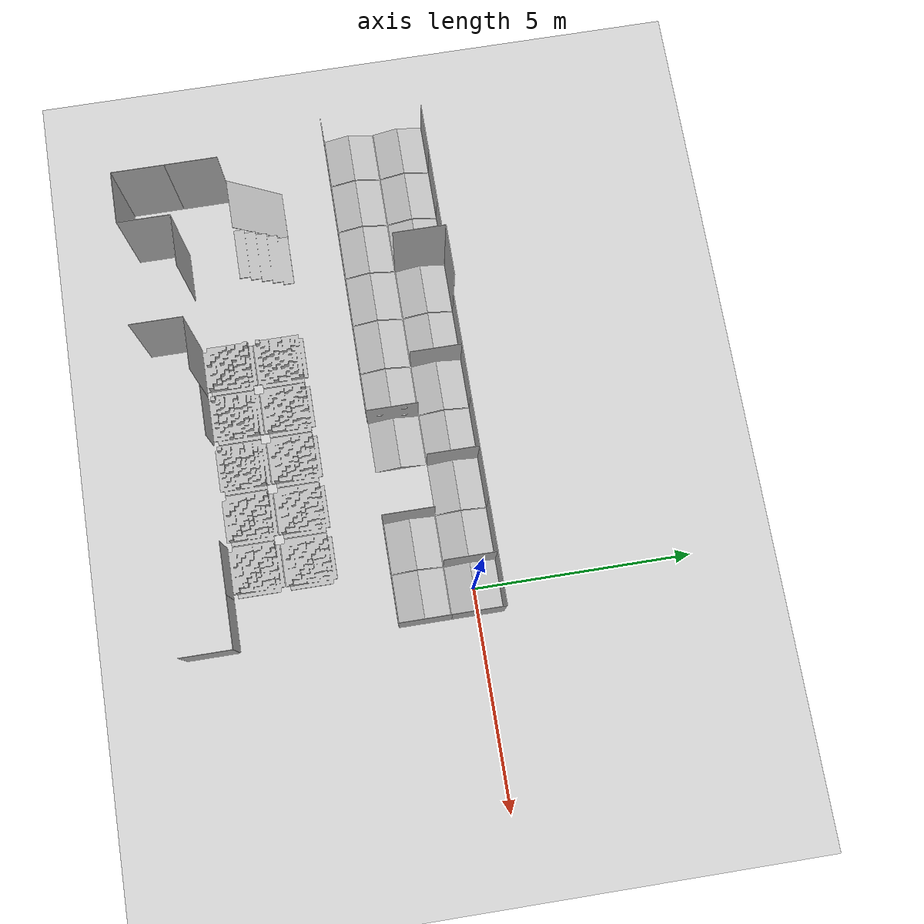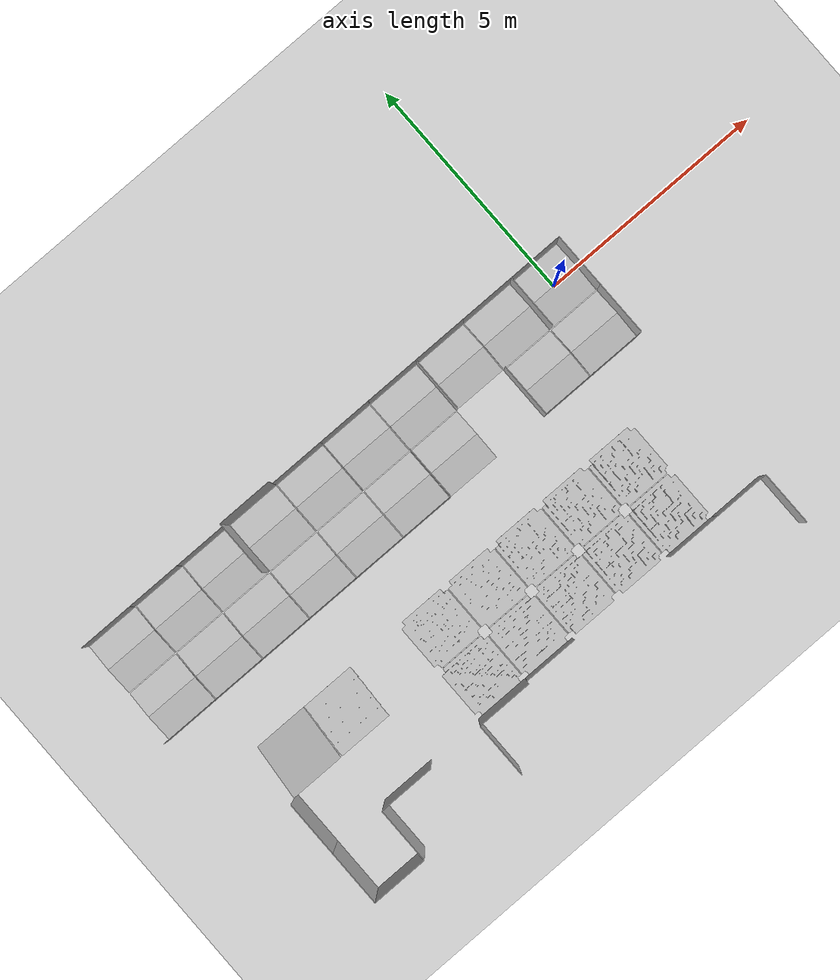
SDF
<sdf version="1.4">
 <world name="default">
  <include><uri>model://sun</uri></include>
  <model name="plane_model">
   <static>true</static>
   <link name="plane_model_link">
    <collision name="plane_model_collision">
     <geometry><plane><normal>0 0 1</normal><size>40 40</size></plane></geometry>
    </collision>
    <visual name="plane_model_visual">
     <cast_shadows>false</cast_shadows>
     <geometry><plane><normal>0 0 1</normal><size>40 40</size></plane></geometry>
     <material><script>Gazebo/Grey</script></material>
    </visual>
   </link>
  </model>
  <model name="small_wall_1">
   <static>true</static>
   <link name="small_wall_1_link">
    <pose>0 0 0 0 0 -1.5708</pose>
    <collision name="small_wall_1_collision">
     <geometry><mesh><uri>file://robocup/walls/small_wall.dae</uri><scale>1 1 1</scale></mesh></geometry>
    </collision>
    <visual name="small_wall_1_visual">
     <cast_shadows>false</cast_shadows>
     <geometry><mesh><uri>file://robocup/walls/small_wall.dae</uri><scale>1 1 1</scale></mesh></geometry>
    </visual>
   </link>
  </model>
  <model name="small_wall_2">
   <static>true</static>
   <link name="small_wall_2_link">
    <pose>0 1.2 0 0 0 -3.14159</pose>
    <collision name="small_wall_2_collision">
     <geometry><mesh><uri>file://robocup/walls/small_wall.dae</uri><scale>1 1 1</scale></mesh></geometry>
    </collision>
    <visual name="small_wall_2_visual">
     <cast_shadows>false</cast_shadows>
     <geometry><mesh><uri>file://robocup/walls/small_wall.dae</uri><scale>1 1 1</scale></mesh></geometry>
    </visual>
   </link>
  </model>
  <model name="small_wall_3">
   <static>true</static>
   <link name="small_wall_3_link">
    <pose>0 -1.2 0 0 0 -1.5708</pose>
    <collision name="small_wall_3_collision">
     <geometry><mesh><uri>file://robocup/walls/small_wall.dae</uri><scale>1 1 1</scale></mesh></geometry>
    </collision>
    <visual name="small_wall_3_visual">
     <cast_shadows>false</cast_shadows>
     <geometry><mesh><uri>file://robocup/walls/small_wall.dae</uri><scale>1 1 1</scale></mesh></geometry>
    </visual>
   </link>
  </model>
  <model name="small_wall_4">
   <static>true</static>
   <link name="small_wall_4_link">
    <pose>0 -2.4 0 0 0 0</pose>
    <collision name="small_wall_4_collision">
     <geometry><mesh><uri>file://robocup/walls/small_wall.dae</uri><scale>1 1 1</scale></mesh></geometry>
    </collision>
    <visual name="small_wall_4_visual">
     <cast_shadows>false</cast_shadows>
     <geometry><mesh><uri>file://robocup/walls/small_wall.dae</uri><scale>1 1 1</scale></mesh></geometry>
    </visual>
   </link>
  </model>
  <model name="small_wall_5">
   <static>true</static>
   <link name="small_wall_5_link">
    <pose>0 0 0 0 0 -4.71239</pose>
    <collision name="small_wall_5_collision">
     <geometry><mesh><uri>file://robocup/walls/small_wall.dae</uri><scale>1 1 1</scale></mesh></geometry>
    </collision>
    <visual name="small_wall_5_visual">
     <cast_shadows>false</cast_shadows>
     <geometry><mesh><uri>file://robocup/walls/small_wall.dae</uri><scale>1 1 1</scale></mesh></geometry>
    </visual>
   </link>
  </model>
  <model name="small_wall_6">
   <static>true</static>
   <link name="small_wall_6_link">
    <pose>-1.2 0 0 0 0 0</pose>
    <collision name="small_wall_6_collision">
     <geometry><mesh><uri>file://robocup/walls/small_wall.dae</uri><scale>1 1 1</scale></mesh></geometry>
    </collision>
    <visual name="small_wall_6_visual">
     <cast_shadows>false</cast_shadows>
     <geometry><mesh><uri>file://robocup/walls/small_wall.dae</uri><scale>1 1 1</scale></mesh></geometry>
    </visual>
   </link>
  </model>
  <model name="small_wall_7">
   <static>true</static>
   <link name="small_wall_7_link">
    <pose>-2.4 1.2 0 0 0 -3.14159</pose>
    <collision name="small_wall_7_collision">
     <geometry><mesh><uri>file://robocup/walls/small_wall.dae</uri><scale>1 1 1</scale></mesh></geometry>
    </collision>
    <visual name="small_wall_7_visual">
     <cast_shadows>false</cast_shadows>
     <geometry><mesh><uri>file://robocup/walls/small_wall.dae</uri><scale>1 1 1</scale></mesh></geometry>
    </visual>
   </link>
  </model>
  <model name="small_wall_8">
   <static>true</static>
   <link name="small_wall_8_link">
    <pose>-3.6 0 0 0 0 0</pose>
    <collision name="small_wall_8_collision">
     <geometry><mesh><uri>file://robocup/walls/small_wall.dae</uri><scale>1 1 1</scale></mesh></geometry>
    </collision>
    <visual name="small_wall_8_visual">
     <cast_shadows>false</cast_shadows>
     <geometry><mesh><uri>file://robocup/walls/small_wall.dae</uri><scale>1 1 1</scale></mesh></geometry>
    </visual>
   </link>
  </model>
  <model name="half_ramp_1">
   <static>true</static>
   <link name="half_ramp_1_link">
    <collision name="half_ramp_1_collision">
     <geometry><mesh><uri>file://robocup/ramps/half_ramp.dae</uri><scale>1 1 1</scale></mesh></geometry>
    </collision>
    <visual name="half_ramp_1_visual">
     <cast_shadows>false</cast_shadows>
     <geometry><mesh><uri>file://robocup/ramps/half_ramp.dae</uri><scale>1 1 1</scale></mesh></geometry>
    </visual>
   </link>
  </model>
  <model name="half_ramp_2">
   <static>true</static>
   <link name="half_ramp_2_link">
    <pose>0 -1.2 0 0 0 0</pose>
    <collision name="half_ramp_2_collision">
     <geometry><mesh><uri>file://robocup/ramps/half_ramp.dae</uri><scale>1 1 1</scale></mesh></geometry>
    </collision>
    <visual name="half_ramp_2_visual">
     <cast_shadows>false</cast_shadows>
     <geometry><mesh><uri>file://robocup/ramps/half_ramp.dae</uri><scale>1 1 1</scale></mesh></geometry>
    </visual>
   </link>
  </model>
  <model name="half_ramp_3">
   <static>true</static>
   <link name="half_ramp_3_link">
    <pose>-1.2 0 0 0 0 -3.14159</pose>
    <collision name="half_ramp_3_collision">
     <geometry><mesh><uri>file://robocup/ramps/half_ramp.dae</uri><scale>1 1 1</scale></mesh></geometry>
    </collision>
    <visual name="half_ramp_3_visual">
     <cast_shadows>false</cast_shadows>
     <geometry><mesh><uri>file://robocup/ramps/half_ramp.dae</uri><scale>1 1 1</scale></mesh></geometry>
    </visual>
   </link>
  </model>
  <model name="half_ramp_4">
   <static>true</static>
   <link name="half_ramp_4_link">
    <pose>-1.2 -1.2 0 0 0 0</pose>
    <collision name="half_ramp_4_collision">
     <geometry><mesh><uri>file://robocup/ramps/half_ramp.dae</uri><scale>1 1 1</scale></mesh></geometry>
    </collision>
    <visual name="half_ramp_4_visual">
     <cast_shadows>false</cast_shadows>
     <geometry><mesh><uri>file://robocup/ramps/half_ramp.dae</uri><scale>1 1 1</scale></mesh></geometry>
    </visual>
   </link>
  </model>
  <model name="half_ramp_5">
   <static>true</static>
   <link name="half_ramp_5_link">
    <pose>-2.4 0 0 0 0 0</pose>
    <collision name="half_ramp_5_collision">
     <geometry><mesh><uri>file://robocup/ramps/half_ramp.dae</uri><scale>1 1 1</scale></mesh></geometry>
    </collision>
    <visual name="half_ramp_5_visual">
     <cast_shadows>false</cast_shadows>
     <geometry><mesh><uri>file://robocup/ramps/half_ramp.dae</uri><scale>1 1 1</scale></mesh></geometry>
    </visual>
   </link>
  </model>
  <model name="half_ramp_6">
   <static>true</static>
   <link name="half_ramp_6_link">
    <pose>-2.4 0 0 0 0 -3.14159</pose>
    <collision name="half_ramp_6_collision">
     <geometry><mesh><uri>file://robocup/ramps/half_ramp.dae</uri><scale>1 1 1</scale></mesh></geometry>
    </collision>
    <visual name="half_ramp_6_visual">
     <cast_shadows>false</cast_shadows>
     <geometry><mesh><uri>file://robocup/ramps/half_ramp.dae</uri><scale>1 1 1</scale></mesh></geometry>
    </visual>
   </link>
  </model>
  <model name="half_ramp_7">
   <static>true</static>
   <link name="half_ramp_7_link">
    <pose>-1.2 0 0 0 0 0</pose>
    <collision name="half_ramp_7_collision">
     <geometry><mesh><uri>file://robocup/ramps/half_ramp.dae</uri><scale>1 1 1</scale></mesh></geometry>
    </collision>
    <visual name="half_ramp_7_visual">
     <cast_shadows>false</cast_shadows>
     <geometry><mesh><uri>file://robocup/ramps/half_ramp.dae</uri><scale>1 1 1</scale></mesh></geometry>
    </visual>
   </link>
  </model>
  <model name="half_ramp_8">
   <static>true</static>
   <link name="half_ramp_8_link">
    <pose>0 0 0 0 0 -3.14159</pose>
    <collision name="half_ramp_8_collision">
     <geometry><mesh><uri>file://robocup/ramps/half_ramp.dae</uri><scale>1 1 1</scale></mesh></geometry>
    </collision>
    <visual name="half_ramp_8_visual">
     <cast_shadows>false</cast_shadows>
     <geometry><mesh><uri>file://robocup/ramps/half_ramp.dae</uri><scale>1 1 1</scale></mesh></geometry>
    </visual>
   </link>
  </model>
  <model name="half_ramp_9">
   <static>true</static>
   <link name="half_ramp_9_link">
    <pose>0 -1.2 0 0 0 -3.14159</pose>
    <collision name="half_ramp_9_collision">
     <geometry><mesh><uri>file://robocup/ramps/half_ramp.dae</uri><scale>1 1 1</scale></mesh></geometry>
    </collision>
    <visual name="half_ramp_9_visual">
     <cast_shadows>false</cast_shadows>
     <geometry><mesh><uri>file://robocup/ramps/half_ramp.dae</uri><scale>1 1 1</scale></mesh></geometry>
    </visual>
   </link>
  </model>
  <model name="half_ramp_10">
   <static>true</static>
   <link name="half_ramp_10_link">
    <pose>-1.2 -1.2 0 0 0 -3.14159</pose>
    <collision name="half_ramp_10_collision">
     <geometry><mesh><uri>file://robocup/ramps/half_ramp.dae</uri><scale>1 1 1</scale></mesh></geometry>
    </collision>
    <visual name="half_ramp_10_visual">
     <cast_shadows>false</cast_shadows>
     <geometry><mesh><uri>file://robocup/ramps/half_ramp.dae</uri><scale>1 1 1</scale></mesh></geometry>
    </visual>
   </link>
  </model>
  <model name="small_wall_9">
   <static>true</static>
   <link name="small_wall_9_link">
    <pose>-1.2 -2.4 0 0 0 0</pose>
    <collision name="small_wall_9_collision">
     <geometry><mesh><uri>file://robocup/walls/small_wall.dae</uri><scale>1 1 1</scale></mesh></geometry>
    </collision>
    <visual name="small_wall_9_visual">
     <cast_shadows>false</cast_shadows>
     <geometry><mesh><uri>file://robocup/walls/small_wall.dae</uri><scale>1 1 1</scale></mesh></geometry>
    </visual>
   </link>
  </model>
  <model name="small_wall_10">
   <static>true</static>
   <link name="small_wall_10_link">
    <pose>-1.2 -1.2 0 0 0 -4.71239</pose>
    <collision name="small_wall_10_collision">
     <geometry><mesh><uri>file://robocup/walls/small_wall.dae</uri><scale>1 1 1</scale></mesh></geometry>
    </collision>
    <visual name="small_wall_10_visual">
     <cast_shadows>false</cast_shadows>
     <geometry><mesh><uri>file://robocup/walls/small_wall.dae</uri><scale>1 1 1</scale></mesh></geometry>
    </visual>
   </link>
  </model>
  <model name="small_wall_13">
   <static>true</static>
   <link name="small_wall_13_link">
    <pose>-2.4 0 0 0 0 -4.71239</pose>
    <collision name="small_wall_13_collision">
     <geometry><mesh><uri>file://robocup/walls/small_wall.dae</uri><scale>1 1 1</scale></mesh></geometry>
    </collision>
    <visual name="small_wall_13_visual">
     <cast_shadows>false</cast_shadows>
     <geometry><mesh><uri>file://robocup/walls/small_wall.dae</uri><scale>1 1 1</scale></mesh></geometry>
    </visual>
   </link>
  </model>
  <model name="small_wall_14">
   <static>true</static>
   <link name="small_wall_14_link">
    <pose>-4.8 0 0 0 0 0</pose>
    <collision name="small_wall_14_collision">
     <geometry><mesh><uri>file://robocup/walls/small_wall.dae</uri><scale>1 1 1</scale></mesh></geometry>
    </collision>
    <visual name="small_wall_14_visual">
     <cast_shadows>false</cast_shadows>
     <geometry><mesh><uri>file://robocup/walls/small_wall.dae</uri><scale>1 1 1</scale></mesh></geometry>
    </visual>
   </link>
  </model>
  <model name="small_wall_15">
   <static>true</static>
   <link name="small_wall_15_link">
    <pose>-6 0 0 0 0 0</pose>
    <collision name="small_wall_15_collision">
     <geometry><mesh><uri>file://robocup/walls/small_wall.dae</uri><scale>1 1 1</scale></mesh></geometry>
    </collision>
    <visual name="small_wall_15_visual">
     <cast_shadows>false</cast_shadows>
     <geometry><mesh><uri>file://robocup/walls/small_wall.dae</uri><scale>1 1 1</scale></mesh></geometry>
    </visual>
   </link>
  </model>
  <model name="small_wall_16">
   <static>true</static>
   <link name="small_wall_16_link">
    <pose>-4.8 -1.2 0 0 0 -3.14159</pose>
    <collision name="small_wall_16_collision">
     <geometry><mesh><uri>file://robocup/walls/small_wall.dae</uri><scale>1 1 1</scale></mesh></geometry>
    </collision>
    <visual name="small_wall_16_visual">
     <cast_shadows>false</cast_shadows>
     <geometry><mesh><uri>file://robocup/walls/small_wall.dae</uri><scale>1 1 1</scale></mesh></geometry>
    </visual>
   </link>
  </model>
  <model name="small_wall_17">
   <static>true</static>
   <link name="small_wall_17_link">
    <pose>-6 -1.2 0 0 0 -3.14159</pose>
    <collision name="small_wall_17_collision">
     <geometry><mesh><uri>file://robocup/walls/small_wall.dae</uri><scale>1 1 1</scale></mesh></geometry>
    </collision>
    <visual name="small_wall_17_visual">
     <cast_shadows>false</cast_shadows>
     <geometry><mesh><uri>file://robocup/walls/small_wall.dae</uri><scale>1 1 1</scale></mesh></geometry>
    </visual>
   </link>
  </model>
  <model name="small_wall_18">
   <static>true</static>
   <link name="small_wall_18_link">
    <pose>-4.8 0 0 0 0 -4.71239</pose>
    <collision name="small_wall_18_collision">
     <geometry><mesh><uri>file://robocup/walls/small_wall.dae</uri><scale>1 1 1</scale></mesh></geometry>
    </collision>
    <visual name="small_wall_18_visual">
     <cast_shadows>false</cast_shadows>
     <geometry><mesh><uri>file://robocup/walls/small_wall.dae</uri><scale>1 1 1</scale></mesh></geometry>
    </visual>
   </link>
  </model>
  <model name="small_wall_19">
   <static>true</static>
   <link name="small_wall_19_link">
    <pose>-7.2 -2.4 0 0 0 0</pose>
    <collision name="small_wall_19_collision">
     <geometry><mesh><uri>file://robocup/walls/small_wall.dae</uri><scale>1 1 1</scale></mesh></geometry>
    </collision>
    <visual name="small_wall_19_visual">
     <cast_shadows>false</cast_shadows>
     <geometry><mesh><uri>file://robocup/walls/small_wall.dae</uri><scale>1 1 1</scale></mesh></geometry>
    </visual>
   </link>
  </model>
  <model name="tall_wall_1">
   <static>true</static>
   <link name="tall_wall_1_link">
    <pose>-7.2 1.2 0 0 0 -3.14159</pose>
    <collision name="tall_wall_1_collision">
     <geometry><mesh><uri>file://robocup/walls/tall_wall.dae</uri><scale>1 1 1</scale></mesh></geometry>
    </collision>
    <visual name="tall_wall_1_visual">
     <cast_shadows>false</cast_shadows>
     <geometry><mesh><uri>file://robocup/walls/tall_wall.dae</uri><scale>1 1 1</scale></mesh></geometry>
    </visual>
   </link>
  </model>
  <model name="tall_wall_2">
   <static>true</static>
   <link name="tall_wall_2_link">
    <pose>-8.4 0 0 0 0 -1.5708</pose>
    <collision name="tall_wall_2_collision">
     <geometry><mesh><uri>file://robocup/walls/tall_wall.dae</uri><scale>1 1 1</scale></mesh></geometry>
    </collision>
    <visual name="tall_wall_2_visual">
     <cast_shadows>false</cast_shadows>
     <geometry><mesh><uri>file://robocup/walls/tall_wall.dae</uri><scale>1 1 1</scale></mesh></geometry>
    </visual>
   </link>
  </model>
  <model name="small_wall_20">
   <static>true</static>
   <link name="small_wall_20_link">
    <pose>-8.4 -1.2 0 0 0 -3.14159</pose>
    <collision name="small_wall_20_collision">
     <geometry><mesh><uri>file://robocup/walls/small_wall.dae</uri><scale>1 1 1</scale></mesh></geometry>
    </collision>
    <visual name="small_wall_20_visual">
     <cast_shadows>false</cast_shadows>
     <geometry><mesh><uri>file://robocup/walls/small_wall.dae</uri><scale>1 1 1</scale></mesh></geometry>
    </visual>
   </link>
  </model>
  <model name="small_wall_21">
   <static>true</static>
   <link name="small_wall_21_link">
    <pose>-8.4 1.2 0 0 0 -3.14159</pose>
    <collision name="small_wall_21_collision">
     <geometry><mesh><uri>file://robocup/walls/small_wall.dae</uri><scale>1 1 1</scale></mesh></geometry>
    </collision>
    <visual name="small_wall_21_visual">
     <cast_shadows>false</cast_shadows>
     <geometry><mesh><uri>file://robocup/walls/small_wall.dae</uri><scale>1 1 1</scale></mesh></geometry>
    </visual>
   </link>
  </model>
  <model name="small_wall_22">
   <static>true</static>
   <link name="small_wall_22_link">
    <pose>-9.6 1.2 0 0 0 -3.14159</pose>
    <collision name="small_wall_22_collision">
     <geometry><mesh><uri>file://robocup/walls/small_wall.dae</uri><scale>1 1 1</scale></mesh></geometry>
    </collision>
    <visual name="small_wall_22_visual">
     <cast_shadows>false</cast_shadows>
     <geometry><mesh><uri>file://robocup/walls/small_wall.dae</uri><scale>1 1 1</scale></mesh></geometry>
    </visual>
   </link>
  </model>
  <model name="small_wall_23">
   <static>true</static>
   <link name="small_wall_23_link">
    <pose>-10.8 0 0 0 0 0</pose>
    <collision name="small_wall_23_collision">
     <geometry><mesh><uri>file://robocup/walls/small_wall.dae</uri><scale>1 1 1</scale></mesh></geometry>
    </collision>
    <visual name="small_wall_23_visual">
     <cast_shadows>false</cast_shadows>
     <geometry><mesh><uri>file://robocup/walls/small_wall.dae</uri><scale>1 1 1</scale></mesh></geometry>
    </visual>
   </link>
  </model>
  <model name="small_wall_24">
   <static>true</static>
   <link name="small_wall_24_link">
    <pose>-9.6 -1.2 0 0 0 -3.14159</pose>
    <collision name="small_wall_24_collision">
     <geometry><mesh><uri>file://robocup/walls/small_wall.dae</uri><scale>1 1 1</scale></mesh></geometry>
    </collision>
    <visual name="small_wall_24_visual">
     <cast_shadows>false</cast_shadows>
     <geometry><mesh><uri>file://robocup/walls/small_wall.dae</uri><scale>1 1 1</scale></mesh></geometry>
    </visual>
   </link>
  </model>
  <model name="small_wall_25">
   <static>true</static>
   <link name="small_wall_25_link">
    <pose>-10.8 -2.4 0 0 0 0</pose>
    <collision name="small_wall_25_collision">
     <geometry><mesh><uri>file://robocup/walls/small_wall.dae</uri><scale>1 1 1</scale></mesh></geometry>
    </collision>
    <visual name="small_wall_25_visual">
     <cast_shadows>false</cast_shadows>
     <geometry><mesh><uri>file://robocup/walls/small_wall.dae</uri><scale>1 1 1</scale></mesh></geometry>
    </visual>
   </link>
  </model>
  <model name="half_ramp_11">
   <static>true</static>
   <link name="half_ramp_11_link">
    <pose>-3.6 0 0 0 0 0</pose>
    <collision name="half_ramp_11_collision">
     <geometry><mesh><uri>file://robocup/ramps/half_ramp.dae</uri><scale>1 1 1</scale></mesh></geometry>
    </collision>
    <visual name="half_ramp_11_visual">
     <cast_shadows>false</cast_shadows>
     <geometry><mesh><uri>file://robocup/ramps/half_ramp.dae</uri><scale>1 1 1</scale></mesh></geometry>
    </visual>
   </link>
  </model>
  <model name="half_ramp_12">
   <static>true</static>
   <link name="half_ramp_12_link">
    <pose>-4.8 0 0 0 0 0</pose>
    <collision name="half_ramp_12_collision">
     <geometry><mesh><uri>file://robocup/ramps/half_ramp.dae</uri><scale>1 1 1</scale></mesh></geometry>
    </collision>
    <visual name="half_ramp_12_visual">
     <cast_shadows>false</cast_shadows>
     <geometry><mesh><uri>file://robocup/ramps/half_ramp.dae</uri><scale>1 1 1</scale></mesh></geometry>
    </visual>
   </link>
  </model>
  <model name="half_ramp_13">
   <static>true</static>
   <link name="half_ramp_13_link">
    <pose>-6 0 0 0 0 0</pose>
    <collision name="half_ramp_13_collision">
     <geometry><mesh><uri>file://robocup/ramps/half_ramp.dae</uri><scale>1 1 1</scale></mesh></geometry>
    </collision>
    <visual name="half_ramp_13_visual">
     <cast_shadows>false</cast_shadows>
     <geometry><mesh><uri>file://robocup/ramps/half_ramp.dae</uri><scale>1 1 1</scale></mesh></geometry>
    </visual>
   </link>
  </model>
  <model name="half_ramp_14">
   <static>true</static>
   <link name="half_ramp_14_link">
    <pose>-7.2 0 0 0 0 0</pose>
    <collision name="half_ramp_14_collision">
     <geometry><mesh><uri>file://robocup/ramps/half_ramp.dae</uri><scale>1 1 1</scale></mesh></geometry>
    </collision>
    <visual name="half_ramp_14_visual">
     <cast_shadows>false</cast_shadows>
     <geometry><mesh><uri>file://robocup/ramps/half_ramp.dae</uri><scale>1 1 1</scale></mesh></geometry>
    </visual>
   </link>
  </model>
  <model name="half_ramp_15">
   <static>true</static>
   <link name="half_ramp_15_link">
    <pose>-8.4 0 0 0 0 0</pose>
    <collision name="half_ramp_15_collision">
     <geometry><mesh><uri>file://robocup/ramps/half_ramp.dae</uri><scale>1 1 1</scale></mesh></geometry>
    </collision>
    <visual name="half_ramp_15_visual">
     <cast_shadows>false</cast_shadows>
     <geometry><mesh><uri>file://robocup/ramps/half_ramp.dae</uri><scale>1 1 1</scale></mesh></geometry>
    </visual>
   </link>
  </model>
  <model name="half_ramp_16">
   <static>true</static>
   <link name="half_ramp_16_link">
    <pose>-9.6 0 0 0 0 0</pose>
    <collision name="half_ramp_16_collision">
     <geometry><mesh><uri>file://robocup/ramps/half_ramp.dae</uri><scale>1 1 1</scale></mesh></geometry>
    </collision>
    <visual name="half_ramp_16_visual">
     <cast_shadows>false</cast_shadows>
     <geometry><mesh><uri>file://robocup/ramps/half_ramp.dae</uri><scale>1 1 1</scale></mesh></geometry>
    </visual>
   </link>
  </model>
  <model name="half_ramp_17">
   <static>true</static>
   <link name="half_ramp_17_link">
    <pose>-10.8 0 0 0 0 0</pose>
    <collision name="half_ramp_17_collision">
     <geometry><mesh><uri>file://robocup/ramps/half_ramp.dae</uri><scale>1 1 1</scale></mesh></geometry>
    </collision>
    <visual name="half_ramp_17_visual">
     <cast_shadows>false</cast_shadows>
     <geometry><mesh><uri>file://robocup/ramps/half_ramp.dae</uri><scale>1 1 1</scale></mesh></geometry>
    </visual>
   </link>
  </model>
  <model name="half_ramp_18">
   <static>true</static>
   <link name="half_ramp_18_link">
    <pose>-3.6 -1.2 0 0 0 0</pose>
    <collision name="half_ramp_18_collision">
     <geometry><mesh><uri>file://robocup/ramps/half_ramp.dae</uri><scale>1 1 1</scale></mesh></geometry>
    </collision>
    <visual name="half_ramp_18_visual">
     <cast_shadows>false</cast_shadows>
     <geometry><mesh><uri>file://robocup/ramps/half_ramp.dae</uri><scale>1 1 1</scale></mesh></geometry>
    </visual>
   </link>
  </model>
  <model name="half_ramp_19">
   <static>true</static>
   <link name="half_ramp_19_link">
    <pose>-4.8 -1.2 0 0 0 0</pose>
    <collision name="half_ramp_19_collision">
     <geometry><mesh><uri>file://robocup/ramps/half_ramp.dae</uri><scale>1 1 1</scale></mesh></geometry>
    </collision>
    <visual name="half_ramp_19_visual">
     <cast_shadows>false</cast_shadows>
     <geometry><mesh><uri>file://robocup/ramps/half_ramp.dae</uri><scale>1 1 1</scale></mesh></geometry>
    </visual>
   </link>
  </model>
  <model name="half_ramp_20">
   <static>true</static>
   <link name="half_ramp_20_link">
    <pose>-6 -1.2 0 0 0 0</pose>
    <collision name="half_ramp_20_collision">
     <geometry><mesh><uri>file://robocup/ramps/half_ramp.dae</uri><scale>1 1 1</scale></mesh></geometry>
    </collision>
    <visual name="half_ramp_20_visual">
     <cast_shadows>false</cast_shadows>
     <geometry><mesh><uri>file://robocup/ramps/half_ramp.dae</uri><scale>1 1 1</scale></mesh></geometry>
    </visual>
   </link>
  </model>
  <model name="half_ramp_21">
   <static>true</static>
   <link name="half_ramp_21_link">
    <pose>-7.2 -1.2 0 0 0 0</pose>
    <collision name="half_ramp_21_collision">
     <geometry><mesh><uri>file://robocup/ramps/half_ramp.dae</uri><scale>1 1 1</scale></mesh></geometry>
    </collision>
    <visual name="half_ramp_21_visual">
     <cast_shadows>false</cast_shadows>
     <geometry><mesh><uri>file://robocup/ramps/half_ramp.dae</uri><scale>1 1 1</scale></mesh></geometry>
    </visual>
   </link>
  </model>
  <model name="half_ramp_22">
   <static>true</static>
   <link name="half_ramp_22_link">
    <pose>-8.4 -1.2 0 0 0 0</pose>
    <collision name="half_ramp_22_collision">
     <geometry><mesh><uri>file://robocup/ramps/half_ramp.dae</uri><scale>1 1 1</scale></mesh></geometry>
    </collision>
    <visual name="half_ramp_22_visual">
     <cast_shadows>false</cast_shadows>
     <geometry><mesh><uri>file://robocup/ramps/half_ramp.dae</uri><scale>1 1 1</scale></mesh></geometry>
    </visual>
   </link>
  </model>
  <model name="half_ramp_23">
   <static>true</static>
   <link name="half_ramp_23_link">
    <pose>-9.6 -1.2 0 0 0 0</pose>
    <collision name="half_ramp_23_collision">
     <geometry><mesh><uri>file://robocup/ramps/half_ramp.dae</uri><scale>1 1 1</scale></mesh></geometry>
    </collision>
    <visual name="half_ramp_23_visual">
     <cast_shadows>false</cast_shadows>
     <geometry><mesh><uri>file://robocup/ramps/half_ramp.dae</uri><scale>1 1 1</scale></mesh></geometry>
    </visual>
   </link>
  </model>
  <model name="half_ramp_24">
   <static>true</static>
   <link name="half_ramp_24_link">
    <pose>-10.8 -1.2 0 0 0 0</pose>
    <collision name="half_ramp_24_collision">
     <geometry><mesh><uri>file://robocup/ramps/half_ramp.dae</uri><scale>1 1 1</scale></mesh></geometry>
    </collision>
    <visual name="half_ramp_24_visual">
     <cast_shadows>false</cast_shadows>
     <geometry><mesh><uri>file://robocup/ramps/half_ramp.dae</uri><scale>1 1 1</scale></mesh></geometry>
    </visual>
   </link>
  </model>
  <model name="half_ramp_25">
   <static>true</static>
   <link name="half_ramp_25_link">
    <pose>-10.8 0 0 0 0 -3.14159</pose>
    <collision name="half_ramp_25_collision">
     <geometry><mesh><uri>file://robocup/ramps/half_ramp.dae</uri><scale>1 1 1</scale></mesh></geometry>
    </collision>
    <visual name="half_ramp_25_visual">
     <cast_shadows>false</cast_shadows>
     <geometry><mesh><uri>file://robocup/ramps/half_ramp.dae</uri><scale>1 1 1</scale></mesh></geometry>
    </visual>
   </link>
  </model>
  <model name="half_ramp_26">
   <static>true</static>
   <link name="half_ramp_26_link">
    <pose>-10.8 -1.2 0 0 0 -3.14159</pose>
    <collision name="half_ramp_26_collision">
     <geometry><mesh><uri>file://robocup/ramps/half_ramp.dae</uri><scale>1 1 1</scale></mesh></geometry>
    </collision>
    <visual name="half_ramp_26_visual">
     <cast_shadows>false</cast_shadows>
     <geometry><mesh><uri>file://robocup/ramps/half_ramp.dae</uri><scale>1 1 1</scale></mesh></geometry>
    </visual>
   </link>
  </model>
  <model name="half_ramp_27">
   <static>true</static>
   <link name="half_ramp_27_link">
    <pose>-9.6 -1.2 0 0 0 -3.14159</pose>
    <collision name="half_ramp_27_collision">
     <geometry><mesh><uri>file://robocup/ramps/half_ramp.dae</uri><scale>1 1 1</scale></mesh></geometry>
    </collision>
    <visual name="half_ramp_27_visual">
     <cast_shadows>false</cast_shadows>
     <geometry><mesh><uri>file://robocup/ramps/half_ramp.dae</uri><scale>1 1 1</scale></mesh></geometry>
    </visual>
   </link>
  </model>
  <model name="half_ramp_28">
   <static>true</static>
   <link name="half_ramp_28_link">
    <pose>-8.4 -1.2 0 0 0 -3.14159</pose>
    <collision name="half_ramp_28_collision">
     <geometry><mesh><uri>file://robocup/ramps/half_ramp.dae</uri><scale>1 1 1</scale></mesh></geometry>
    </collision>
    <visual name="half_ramp_28_visual">
     <cast_shadows>false</cast_shadows>
     <geometry><mesh><uri>file://robocup/ramps/half_ramp.dae</uri><scale>1 1 1</scale></mesh></geometry>
    </visual>
   </link>
  </model>
  <model name="half_ramp_29">
   <static>true</static>
   <link name="half_ramp_29_link">
    <pose>-7.2 -1.2 0 0 0 -3.14159</pose>
    <collision name="half_ramp_29_collision">
     <geometry><mesh><uri>file://robocup/ramps/half_ramp.dae</uri><scale>1 1 1</scale></mesh></geometry>
    </collision>
    <visual name="half_ramp_29_visual">
     <cast_shadows>false</cast_shadows>
     <geometry><mesh><uri>file://robocup/ramps/half_ramp.dae</uri><scale>1 1 1</scale></mesh></geometry>
    </visual>
   </link>
  </model>
  <model name="half_ramp_30">
   <static>true</static>
   <link name="half_ramp_30_link">
    <pose>-9.6 0 0 0 0 -3.14159</pose>
    <collision name="half_ramp_30_collision">
     <geometry><mesh><uri>file://robocup/ramps/half_ramp.dae</uri><scale>1 1 1</scale></mesh></geometry>
    </collision>
    <visual name="half_ramp_30_visual">
     <cast_shadows>false</cast_shadows>
     <geometry><mesh><uri>file://robocup/ramps/half_ramp.dae</uri><scale>1 1 1</scale></mesh></geometry>
    </visual>
   </link>
  </model>
  <model name="half_ramp_31">
   <static>true</static>
   <link name="half_ramp_31_link">
    <pose>-8.4 0 0 0 0 -3.14159</pose>
    <collision name="half_ramp_31_collision">
     <geometry><mesh><uri>file://robocup/ramps/half_ramp.dae</uri><scale>1 1 1</scale></mesh></geometry>
    </collision>
    <visual name="half_ramp_31_visual">
     <cast_shadows>false</cast_shadows>
     <geometry><mesh><uri>file://robocup/ramps/half_ramp.dae</uri><scale>1 1 1</scale></mesh></geometry>
    </visual>
   </link>
  </model>
  <model name="half_ramp_32">
   <static>true</static>
   <link name="half_ramp_32_link">
    <pose>-7.2 0 0 0 0 -3.14159</pose>
    <collision name="half_ramp_32_collision">
     <geometry><mesh><uri>file://robocup/ramps/half_ramp.dae</uri><scale>1 1 1</scale></mesh></geometry>
    </collision>
    <visual name="half_ramp_32_visual">
     <cast_shadows>false</cast_shadows>
     <geometry><mesh><uri>file://robocup/ramps/half_ramp.dae</uri><scale>1 1 1</scale></mesh></geometry>
    </visual>
   </link>
  </model>
  <model name="half_ramp_33">
   <static>true</static>
   <link name="half_ramp_33_link">
    <pose>-6 0 0 0 0 -3.14159</pose>
    <collision name="half_ramp_33_collision">
     <geometry><mesh><uri>file://robocup/ramps/half_ramp.dae</uri><scale>1 1 1</scale></mesh></geometry>
    </collision>
    <visual name="half_ramp_33_visual">
     <cast_shadows>false</cast_shadows>
     <geometry><mesh><uri>file://robocup/ramps/half_ramp.dae</uri><scale>1 1 1</scale></mesh></geometry>
    </visual>
   </link>
  </model>
  <model name="half_ramp_34">
   <static>true</static>
   <link name="half_ramp_34_link">
    <pose>-4.8 0 0 0 0 -3.14159</pose>
    <collision name="half_ramp_34_collision">
     <geometry><mesh><uri>file://robocup/ramps/half_ramp.dae</uri><scale>1 1 1</scale></mesh></geometry>
    </collision>
    <visual name="half_ramp_34_visual">
     <cast_shadows>false</cast_shadows>
     <geometry><mesh><uri>file://robocup/ramps/half_ramp.dae</uri><scale>1 1 1</scale></mesh></geometry>
    </visual>
   </link>
  </model>
  <model name="half_ramp_35">
   <static>true</static>
   <link name="half_ramp_35_link">
    <pose>-3.6 0 0 0 0 -3.14159</pose>
    <collision name="half_ramp_35_collision">
     <geometry><mesh><uri>file://robocup/ramps/half_ramp.dae</uri><scale>1 1 1</scale></mesh></geometry>
    </collision>
    <visual name="half_ramp_35_visual">
     <cast_shadows>false</cast_shadows>
     <geometry><mesh><uri>file://robocup/ramps/half_ramp.dae</uri><scale>1 1 1</scale></mesh></geometry>
    </visual>
   </link>
  </model>
  <model name="half_ramp_36">
   <static>true</static>
   <link name="half_ramp_36_link">
    <pose>-6 -1.2 0 0 0 -3.14159</pose>
    <collision name="half_ramp_36_collision">
     <geometry><mesh><uri>file://robocup/ramps/half_ramp.dae</uri><scale>1 1 1</scale></mesh></geometry>
    </collision>
    <visual name="half_ramp_36_visual">
     <cast_shadows>false</cast_shadows>
     <geometry><mesh><uri>file://robocup/ramps/half_ramp.dae</uri><scale>1 1 1</scale></mesh></geometry>
    </visual>
   </link>
  </model>
  <model name="half_ramp_37">
   <static>true</static>
   <link name="half_ramp_37_link">
    <pose>-3.6 -1.2 0 0 0 -3.14159</pose>
    <collision name="half_ramp_37_collision">
     <geometry><mesh><uri>file://robocup/ramps/half_ramp.dae</uri><scale>1 1 1</scale></mesh></geometry>
    </collision>
    <visual name="half_ramp_37_visual">
     <cast_shadows>false</cast_shadows>
     <geometry><mesh><uri>file://robocup/ramps/half_ramp.dae</uri><scale>1 1 1</scale></mesh></geometry>
    </visual>
   </link>
  </model>
  <model name="half_ramp_38">
   <static>true</static>
   <link name="half_ramp_38_link">
    <pose>-4.8 -1.2 0 0 0 -3.14159</pose>
    <collision name="half_ramp_38_collision">
     <geometry><mesh><uri>file://robocup/ramps/half_ramp.dae</uri><scale>1 1 1</scale></mesh></geometry>
    </collision>
    <visual name="half_ramp_38_visual">
     <cast_shadows>false</cast_shadows>
     <geometry><mesh><uri>file://robocup/ramps/half_ramp.dae</uri><scale>1 1 1</scale></mesh></geometry>
    </visual>
   </link>
  </model>
  <model name="wall_holes1_1">
   <static>true</static>
   <link name="wall_holes1_1_link">
    <pose>-4.8 -1.2 0 0 0 -1.5708</pose>
    <collision name="wall_holes1_1_collision">
     <geometry><mesh><uri>file://robocup/walls/small_wall_holes1.dae</uri><scale>1 1 1</scale></mesh></geometry>
    </collision>
    <visual name="wall_holes1_1_visual">
     <cast_shadows>false</cast_shadows>
     <geometry><mesh><uri>file://robocup/walls/small_wall_holes1.dae</uri><scale>1 1 1</scale></mesh></geometry>
    </visual>
   </link>
  </model>
  <model name="stairs_120_1">
   <static>true</static>
   <link name="stairs_120_1_link">
    <pose>-8.4 -3.6 0 0 0 -3.14159</pose>
    <collision name="stairs_120_1_collision">
     <geometry><mesh><uri>file://robocup/other/stairs_120.dae</uri><scale>1 1 1</scale></mesh></geometry>
    </collision>
    <visual name="stairs_120_1_visual">
     <cast_shadows>false</cast_shadows>
     <geometry><mesh><uri>file://robocup/other/stairs_120.dae</uri><scale>1 1 1</scale></mesh></geometry>
    </visual>
   </link>
  </model>
  <model name="simple_elev_ramp_1">
   <static>true</static>
   <link name="simple_elev_ramp_1_link">
    <pose>-9.6 -3.6 0 0 0 -3.14159</pose>
    <collision name="simple_elev_ramp_1_collision">
     <geometry><mesh><uri>file://robocup/ramps/simple_elev_ramp.dae</uri><scale>1 1 1</scale></mesh></geometry>
    </collision>
    <visual name="simple_elev_ramp_1_visual">
     <cast_shadows>false</cast_shadows>
     <geometry><mesh><uri>file://robocup/ramps/simple_elev_ramp.dae</uri><scale>1 1 1</scale></mesh></geometry>
    </visual>
   </link>
  </model>
  <model name="stepfield_red_diagonal_1">
   <static>true</static>
   <link name="stepfield_red_diagonal_1_link">
    <pose>-6 -3.6 0 0 0 0</pose>
    <collision name="stepfield_red_diagonal_1_collision">
     <geometry>
      <mesh><uri>file://robocup/other/stepfield_red_diagonal.dae</uri><scale>1 1 1</scale></mesh>
     </geometry>
    </collision>
    <visual name="stepfield_red_diagonal_1_visual">
     <cast_shadows>false</cast_shadows>
     <geometry>
      <mesh><uri>file://robocup/other/stepfield_red_diagonal.dae</uri><scale>1 1 1</scale></mesh>
     </geometry>
    </visual>
   </link>
  </model>
  <model name="stepfield_red_diagonal_2">
   <static>true</static>
   <link name="stepfield_red_diagonal_2_link">
    <pose>-4.8 -4.8 0 0 0 0</pose>
    <collision name="stepfield_red_diagonal_2_collision">
     <geometry>
      <mesh><uri>file://robocup/other/stepfield_red_diagonal.dae</uri><scale>1 1 1</scale></mesh>
     </geometry>
    </collision>
    <visual name="stepfield_red_diagonal_2_visual">
     <cast_shadows>false</cast_shadows>
     <geometry>
      <mesh><uri>file://robocup/other/stepfield_red_diagonal.dae</uri><scale>1 1 1</scale></mesh>
     </geometry>
    </visual>
   </link>
  </model>
  <model name="stepfield_red_diagonal_3">
   <static>true</static>
   <link name="stepfield_red_diagonal_3_link">
    <pose>-4.8 -3.6 0 0 0 -1.5708</pose>
    <collision name="stepfield_red_diagonal_3_collision">
     <geometry>
      <mesh><uri>file://robocup/other/stepfield_red_diagonal.dae</uri><scale>1 1 1</scale></mesh>
     </geometry>
    </collision>
    <visual name="stepfield_red_diagonal_3_visual">
     <cast_shadows>false</cast_shadows>
     <geometry>
      <mesh><uri>file://robocup/other/stepfield_red_diagonal.dae</uri><scale>1 1 1</scale></mesh>
     </geometry>
    </visual>
   </link>
  </model>
  <model name="stepfield_red_diagonal_4">
   <static>true</static>
   <link name="stepfield_red_diagonal_4_link">
    <pose>-6 -4.8 0 0 0 -1.5708</pose>
    <collision name="stepfield_red_diagonal_4_collision">
     <geometry>
      <mesh><uri>file://robocup/other/stepfield_red_diagonal.dae</uri><scale>1 1 1</scale></mesh>
     </geometry>
    </collision>
    <visual name="stepfield_red_diagonal_4_visual">
     <cast_shadows>false</cast_shadows>
     <geometry>
      <mesh><uri>file://robocup/other/stepfield_red_diagonal.dae</uri><scale>1 1 1</scale></mesh>
     </geometry>
    </visual>
   </link>
  </model>
  <model name="stepfield_red_diagonal_5">
   <static>true</static>
   <link name="stepfield_red_diagonal_5_link">
    <pose>-3.6 -3.6 0 0 0 -1.5708</pose>
    <collision name="stepfield_red_diagonal_5_collision">
     <geometry>
      <mesh><uri>file://robocup/other/stepfield_red_diagonal.dae</uri><scale>1 1 1</scale></mesh>
     </geometry>
    </collision>
    <visual name="stepfield_red_diagonal_5_visual">
     <cast_shadows>false</cast_shadows>
     <geometry>
      <mesh><uri>file://robocup/other/stepfield_red_diagonal.dae</uri><scale>1 1 1</scale></mesh>
     </geometry>
    </visual>
   </link>
  </model>
  <model name="stepfield_red_diagonal_6">
   <static>true</static>
   <link name="stepfield_red_diagonal_6_link">
    <pose>-3.6 -4.8 0 0 0 0</pose>
    <collision name="stepfield_red_diagonal_6_collision">
     <geometry>
      <mesh><uri>file://robocup/other/stepfield_red_diagonal.dae</uri><scale>1 1 1</scale></mesh>
     </geometry>
    </collision>
    <visual name="stepfield_red_diagonal_6_visual">
     <cast_shadows>false</cast_shadows>
     <geometry>
      <mesh><uri>file://robocup/other/stepfield_red_diagonal.dae</uri><scale>1 1 1</scale></mesh>
     </geometry>
    </visual>
   </link>
  </model>
  <model name="stepfield_red_diagonal_7">
   <static>true</static>
   <link name="stepfield_red_diagonal_7_link">
    <pose>-2.4 -3.6 0 0 0 -1.5708</pose>
    <collision name="stepfield_red_diagonal_7_collision">
     <geometry>
      <mesh><uri>file://robocup/other/stepfield_red_diagonal.dae</uri><scale>1 1 1</scale></mesh>
     </geometry>
    </collision>
    <visual name="stepfield_red_diagonal_7_visual">
     <cast_shadows>false</cast_shadows>
     <geometry>
      <mesh><uri>file://robocup/other/stepfield_red_diagonal.dae</uri><scale>1 1 1</scale></mesh>
     </geometry>
    </visual>
   </link>
  </model>
  <model name="stepfield_red_diagonal_8">
   <static>true</static>
   <link name="stepfield_red_diagonal_8_link">
    <pose>-1.2 -3.6 0 0 0 -1.5708</pose>
    <collision name="stepfield_red_diagonal_8_collision">
     <geometry>
      <mesh><uri>file://robocup/other/stepfield_red_diagonal.dae</uri><scale>1 1 1</scale></mesh>
     </geometry>
    </collision>
    <visual name="stepfield_red_diagonal_8_visual">
     <cast_shadows>false</cast_shadows>
     <geometry>
      <mesh><uri>file://robocup/other/stepfield_red_diagonal.dae</uri><scale>1 1 1</scale></mesh>
     </geometry>
    </visual>
   </link>
  </model>
  <model name="stepfield_red_diagonal_9">
   <static>true</static>
   <link name="stepfield_red_diagonal_9_link">
    <pose>-1.2 -4.8 0 0 0 -1.5708</pose>
    <collision name="stepfield_red_diagonal_9_collision">
     <geometry>
      <mesh><uri>file://robocup/other/stepfield_red_diagonal.dae</uri><scale>1 1 1</scale></mesh>
     </geometry>
    </collision>
    <visual name="stepfield_red_diagonal_9_visual">
     <cast_shadows>false</cast_shadows>
     <geometry>
      <mesh><uri>file://robocup/other/stepfield_red_diagonal.dae</uri><scale>1 1 1</scale></mesh>
     </geometry>
    </visual>
   </link>
  </model>
  <model name="stepfield_red_diagonal_10">
   <static>true</static>
   <link name="stepfield_red_diagonal_10_link">
    <pose>-2.4 -4.8 0 0 0 -1.5708</pose>
    <collision name="stepfield_red_diagonal_10_collision">
     <geometry>
      <mesh><uri>file://robocup/other/stepfield_red_diagonal.dae</uri><scale>1 1 1</scale></mesh>
     </geometry>
    </collision>
    <visual name="stepfield_red_diagonal_10_visual">
     <cast_shadows>false</cast_shadows>
     <geometry>
      <mesh><uri>file://robocup/other/stepfield_red_diagonal.dae</uri><scale>1 1 1</scale></mesh>
     </geometry>
    </visual>
   </link>
  </model>
  <model name="tall_wall_3">
   <static>true</static>
   <link name="tall_wall_3_link">
    <pose>-8.4 -6 0 0 0 0</pose>
    <collision name="tall_wall_3_collision">
     <geometry><mesh><uri>file://robocup/walls/tall_wall.dae</uri><scale>1 1 1</scale></mesh></geometry>
    </collision>
    <visual name="tall_wall_3_visual">
     <cast_shadows>false</cast_shadows>
     <geometry><mesh><uri>file://robocup/walls/tall_wall.dae</uri><scale>1 1 1</scale></mesh></geometry>
    </visual>
   </link>
  </model>
  <model name="tall_wall_4">
   <static>true</static>
   <link name="tall_wall_4_link">
    <pose>-9.6 -6 0 0 0 -1.5708</pose>
    <collision name="tall_wall_4_collision">
     <geometry><mesh><uri>file://robocup/walls/tall_wall.dae</uri><scale>1 1 1</scale></mesh></geometry>
    </collision>
    <visual name="tall_wall_4_visual">
     <cast_shadows>false</cast_shadows>
     <geometry><mesh><uri>file://robocup/walls/tall_wall.dae</uri><scale>1 1 1</scale></mesh></geometry>
    </visual>
   </link>
  </model>
  <model name="tall_wall_5">
   <static>true</static>
   <link name="tall_wall_5_link">
    <pose>-9.6 -7.2 0 0 0 0</pose>
    <collision name="tall_wall_5_collision">
     <geometry><mesh><uri>file://robocup/walls/tall_wall.dae</uri><scale>1 1 1</scale></mesh></geometry>
    </collision>
    <visual name="tall_wall_5_visual">
     <cast_shadows>false</cast_shadows>
     <geometry><mesh><uri>file://robocup/walls/tall_wall.dae</uri><scale>1 1 1</scale></mesh></geometry>
    </visual>
   </link>
  </model>
  <model name="tall_wall_6">
   <static>true</static>
   <link name="tall_wall_6_link">
    <pose>-10.8 -6 0 0 0 -1.5708</pose>
    <collision name="tall_wall_6_collision">
     <geometry><mesh><uri>file://robocup/walls/tall_wall.dae</uri><scale>1 1 1</scale></mesh></geometry>
    </collision>
    <visual name="tall_wall_6_visual">
     <cast_shadows>false</cast_shadows>
     <geometry><mesh><uri>file://robocup/walls/tall_wall.dae</uri><scale>1 1 1</scale></mesh></geometry>
    </visual>
   </link>
  </model>
  <model name="tall_wall_7">
   <static>true</static>
   <link name="tall_wall_7_link">
    <pose>-10.8 -4.8 0 0 0 -1.5708</pose>
    <collision name="tall_wall_7_collision">
     <geometry><mesh><uri>file://robocup/walls/tall_wall.dae</uri><scale>1 1 1</scale></mesh></geometry>
    </collision>
    <visual name="tall_wall_7_visual">
     <cast_shadows>false</cast_shadows>
     <geometry><mesh><uri>file://robocup/walls/tall_wall.dae</uri><scale>1 1 1</scale></mesh></geometry>
    </visual>
   </link>
  </model>
  <model name="tall_wall_8">
   <static>true</static>
   <link name="tall_wall_8_link">
    <pose>-6 -6 0 0 0 0</pose>
    <collision name="tall_wall_8_collision">
     <geometry><mesh><uri>file://robocup/walls/tall_wall.dae</uri><scale>1 1 1</scale></mesh></geometry>
    </collision>
    <visual name="tall_wall_8_visual">
     <cast_shadows>false</cast_shadows>
     <geometry><mesh><uri>file://robocup/walls/tall_wall.dae</uri><scale>1 1 1</scale></mesh></geometry>
    </visual>
   </link>
  </model>
  <model name="tall_wall_9">
   <static>true</static>
   <link name="tall_wall_9_link">
    <pose>-6 -6 0 0 0 -4.71239</pose>
    <collision name="tall_wall_9_collision">
     <geometry><mesh><uri>file://robocup/walls/tall_wall.dae</uri><scale>1 1 1</scale></mesh></geometry>
    </collision>
    <visual name="tall_wall_9_visual">
     <cast_shadows>false</cast_shadows>
     <geometry><mesh><uri>file://robocup/walls/tall_wall.dae</uri><scale>1 1 1</scale></mesh></geometry>
    </visual>
   </link>
  </model>
  <model name="small_wall_26">
   <static>true</static>
   <link name="small_wall_26_link">
    <pose>-4.8 -6 0 0 0 0</pose>
    <collision name="small_wall_26_collision">
     <geometry><mesh><uri>file://robocup/walls/small_wall.dae</uri><scale>1 1 1</scale></mesh></geometry>
    </collision>
    <visual name="small_wall_26_visual">
     <cast_shadows>false</cast_shadows>
     <geometry><mesh><uri>file://robocup/walls/small_wall.dae</uri><scale>1 1 1</scale></mesh></geometry>
    </visual>
   </link>
  </model>
  <model name="small_wall_27">
   <static>true</static>
   <link name="small_wall_27_link">
    <pose>-1.2 -4.8 0 0 0 -3.14159</pose>
    <collision name="small_wall_27_collision">
     <geometry><mesh><uri>file://robocup/walls/small_wall.dae</uri><scale>1 1 1</scale></mesh></geometry>
    </collision>
    <visual name="small_wall_27_visual">
     <cast_shadows>false</cast_shadows>
     <geometry><mesh><uri>file://robocup/walls/small_wall.dae</uri><scale>1 1 1</scale></mesh></geometry>
    </visual>
   </link>
  </model>
  <model name="small_wall_28">
   <static>true</static>
   <link name="small_wall_28_link">
    <pose>0 -4.8 0 0 0 -3.14159</pose>
    <collision name="small_wall_28_collision">
     <geometry><mesh><uri>file://robocup/walls/small_wall.dae</uri><scale>1 1 1</scale></mesh></geometry>
    </collision>
    <visual name="small_wall_28_visual">
     <cast_shadows>false</cast_shadows>
     <geometry><mesh><uri>file://robocup/walls/small_wall.dae</uri><scale>1 1 1</scale></mesh></geometry>
    </visual>
   </link>
  </model>
  <model name="small_wall_29">
   <static>true</static>
   <link name="small_wall_29_link">
    <pose>0 -6 0 0 0 -1.5708</pose>
    <collision name="small_wall_29_collision">
     <geometry><mesh><uri>file://robocup/walls/small_wall.dae</uri><scale>1 1 1</scale></mesh></geometry>
    </collision>
    <visual name="small_wall_29_visual">
     <cast_shadows>false</cast_shadows>
     <geometry><mesh><uri>file://robocup/walls/small_wall.dae</uri><scale>1 1 1</scale></mesh></geometry>
    </visual>
   </link>
  </model>
 </world>
</sdf>
